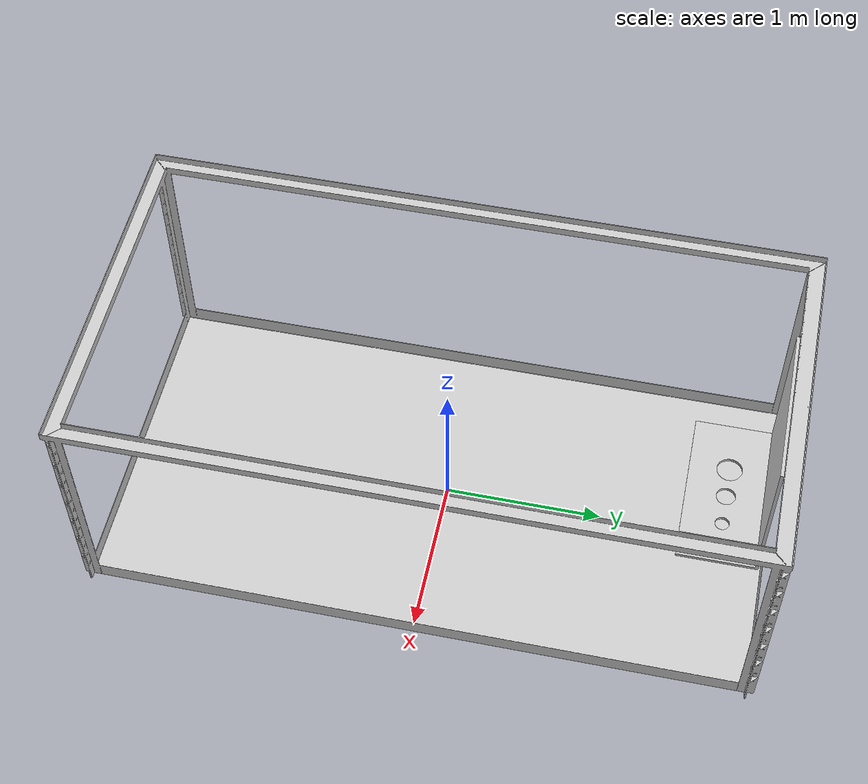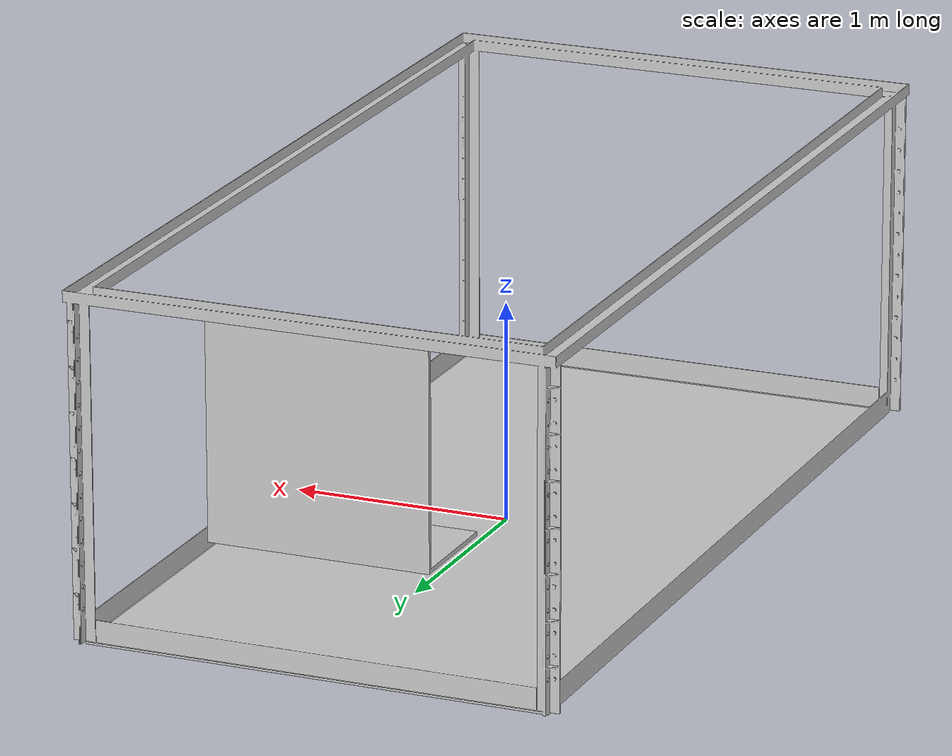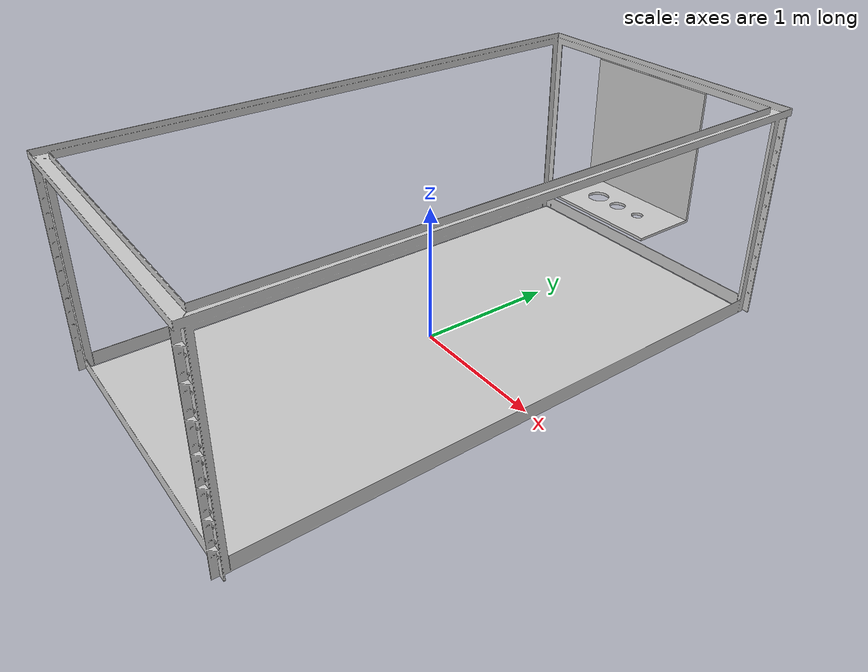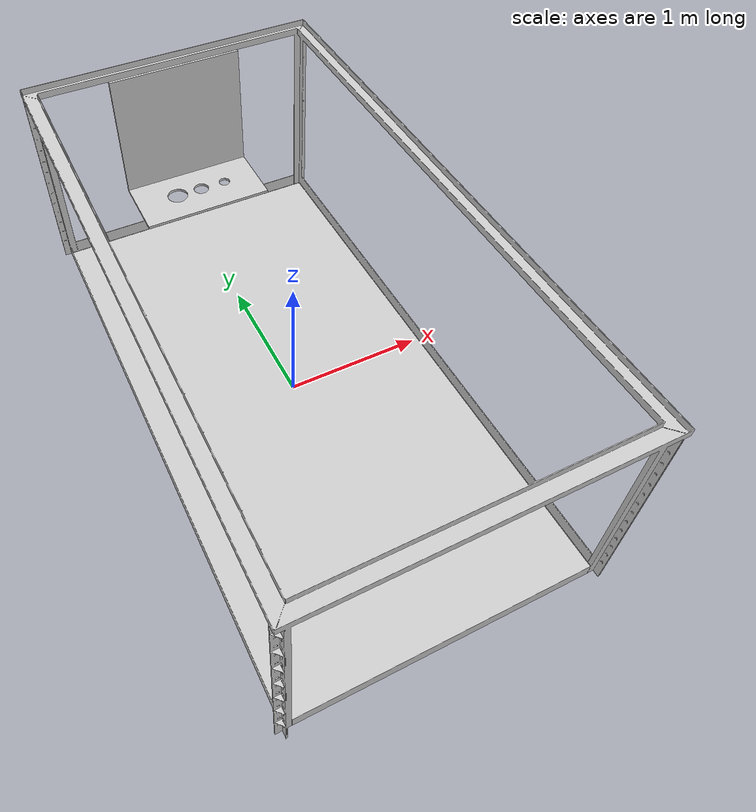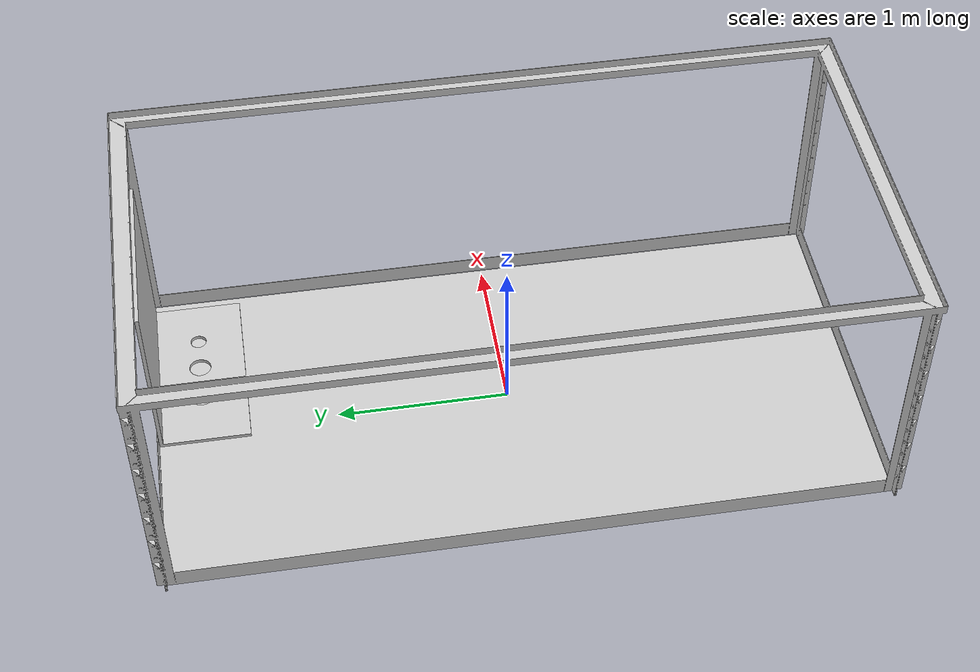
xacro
<?xml version="1.0"?>
<robot xmlns:xacro="http://www.ros.org/wiki/xacro" name="pool">
    <xacro:include filename="$(find hippo_sim)/models/common/urdf/common.xacro" />
    <gazebo>
        <static>true</static>
    </gazebo>
    <link name="base_link">
        <xacro:zero_inertia />
        <visual>
            <geometry>
                <mesh filename="$(find hippo_sim)/models/pool/meshes/pool.dae" />
            </geometry>
        </visual>
    </link>

    <gazebo reference="base_link">
        <visual>
            <material>
                <ambient>1 1 1 1</ambient>
                <diffuse>1 1 1 1</diffuse>
                <specular>1 1 1 1</specular>
                <pbr>
                    <metal>
                        <metalness>1</metalness>
                        <roughness>0.5</roughness>
                        <environment_map>$(find hippo_sim)/models/common/textures/env_map.dds</environment_map>
                        <albedo_map>$(find hippo_sim)/models/common/textures/blue.png</albedo_map>
                    </metal>
                </pbr>
            </material>
        </visual>
    </gazebo>

    <gazebo>
        <static>true</static>
    </gazebo>
    <link name="rack">
        <xacro:zero_inertia />
        <visual>
            <geometry>
                <mesh filename="$(find hippo_sim)/models/rack/meshes/rack.dae" />
            </geometry>
        </visual>
    </link>

    <joint name="base_to_rack" type="fixed">
        <parent link="base_link" />
        <child link="rack" />
        <origin xyz="0 2.0 0.5" />
    </joint>

    <gazebo reference="rack">
        <visual>
            <material>
                <ambient>1 1 1 1</ambient>
                <diffuse>1 1 1 1</diffuse>
                <specular>1 1 1 1</specular>
                <pbr>
                    <metal>
                        <metalness>1</metalness>
                        <roughness>0.5</roughness>
                        <environment_map>$(find hippo_sim)/models/common/textures/env_map.dds</environment_map>
                        <albedo_map>$(find hippo_sim)/models/common/textures/blue.png</albedo_map>
                    </metal>
                </pbr>
            </material>
        </visual>
    </gazebo>

</robot>
